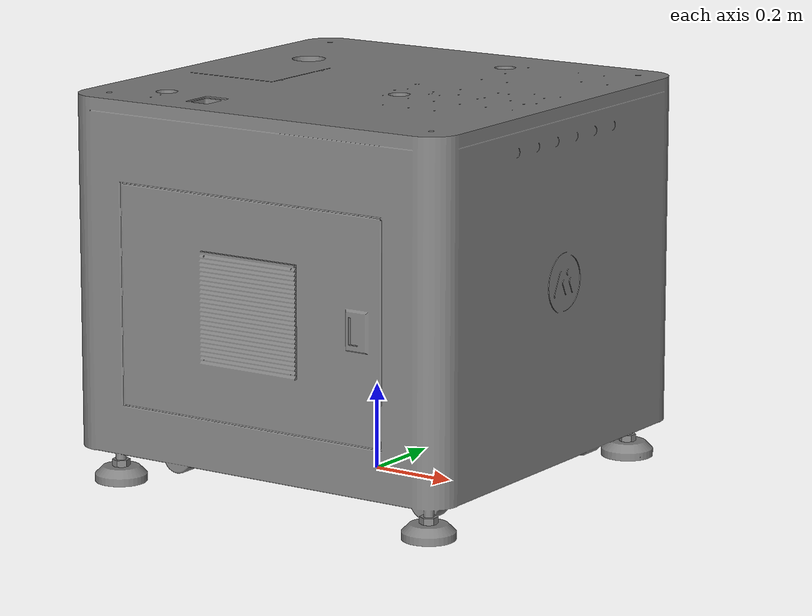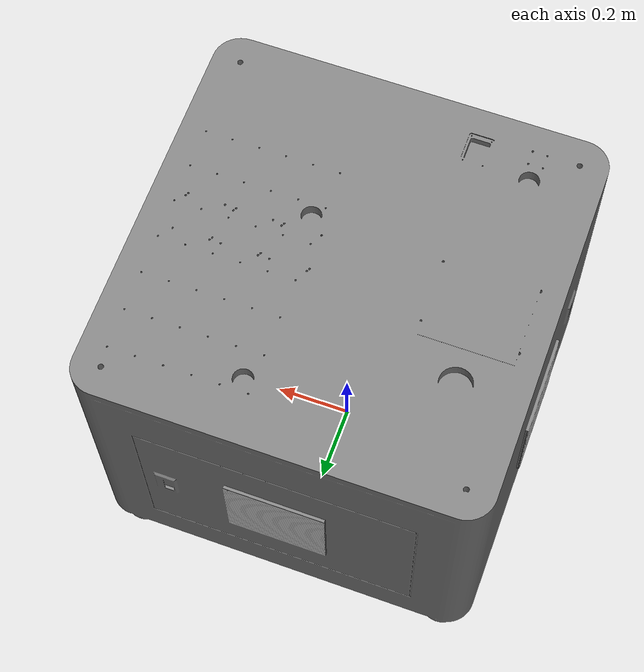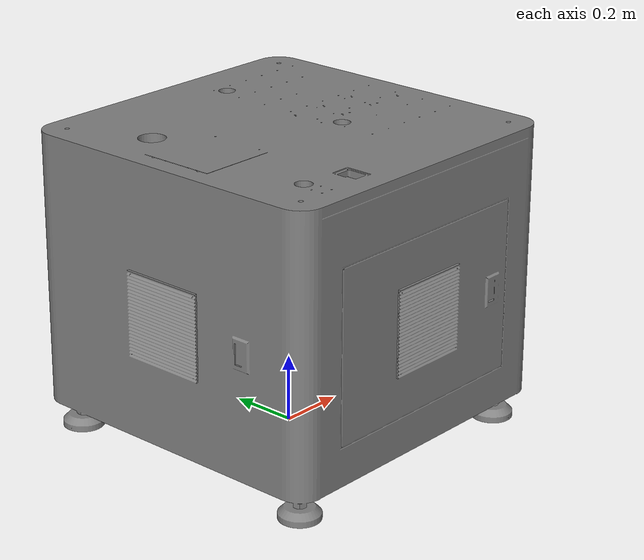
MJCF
<mujoco model="workstation">
	<compiler angle="radian" strippath="true" autolimits="true" inertiafromgeom="true" />
	<include file="../common/default.xml" />

    <asset>
        <mesh name="workstation" file="../assets/workstation.stl" scale="0.001 0.001 0.001"/>
    </asset>

	<worldbody>
        <body name="workstation" pos="0.0 0.0 0.0" euler="0.0 0.0 0.0">
            <geom name="workstation" type="mesh" mesh="workstation" pos="0 0 0" euler="0 0 0" />
            <inertial mass="6.33410824" pos="-0.0009076239125194803 4.158962513021695e-05 0.49102003186848836"/>
	    </body>
	</worldbody>
</mujoco>

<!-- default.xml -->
<mujoco>
    <default>

        <default class="ur5e">
            <material specular="0.5" shininess="0.25"/>
            <joint axis="0 1 0" range="-6.28319 6.28319" armature="0.1"/>
            <general gaintype="fixed" biastype="affine" ctrlrange="-6.2831 6.2831" gainprm="2000" biasprm="0 -2000 -200" forcerange="-150 150"/>
            <site size="0.001" rgba="0.5 0.5 0.5 0.3" group="4"/>
        </default>

        <default class="visual">
            <geom type="mesh" contype="0" conaffinity="0" group="2" rgba="1 1 1 1"/>
        </default>

        <default class="collision">
            <geom  type="mesh" contype="1" conaffinity="1" group="2" rgba="1 1 1 1"/>
        </default>
    </default>
</mujoco>
